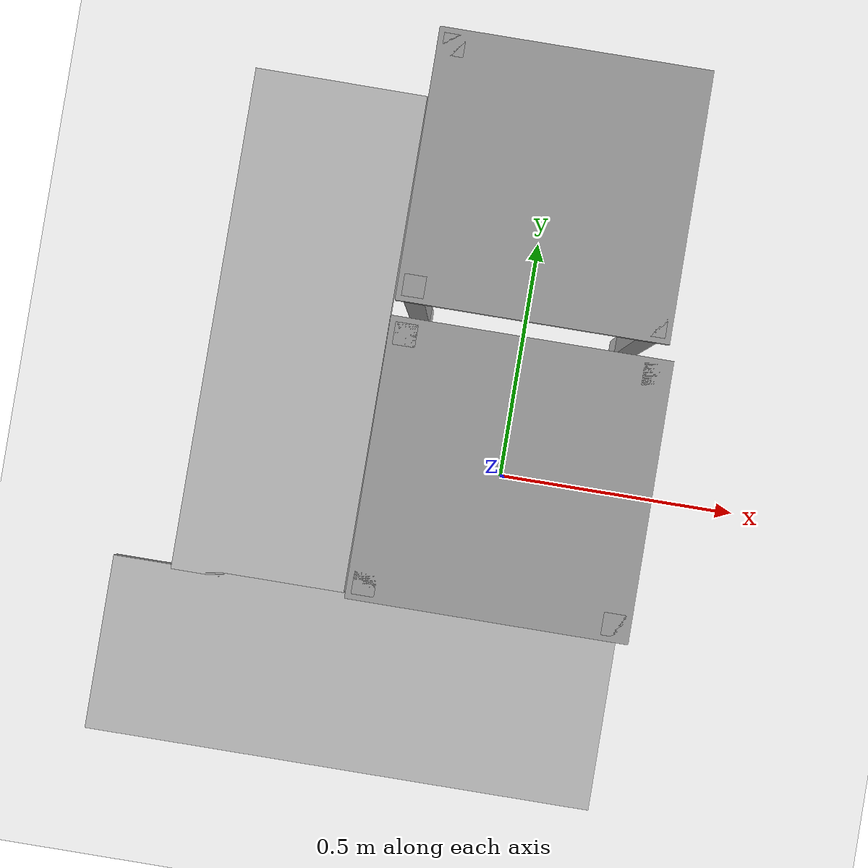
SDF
<sdf version="1.7">
 <world name="default">
  <plugin name="gazebo_ros_power_monitor_controller" filename="libgazebo_ros_link_attacher.so"/>
  <light name="sun" type="directional">
   <pose>0 0 10 0 -0 0</pose>
   <diffuse>0.8 0.8 0.8 1</diffuse>
   <specular>0.2 0.2 0.2 1</specular>
   <attenuation>
    <range>1000</range>
    <constant>0.9</constant>
    <linear>0.01</linear>
    <quadratic>0.001</quadratic>
   </attenuation>
   <direction>-0.5 0.1 -0.9</direction>
   <spot><inner_angle>0</inner_angle><outer_angle>0</outer_angle><falloff>0</falloff></spot>
  </light>
  <model name="ground_plane">
   <static>1</static>
   <link name="link">
    <collision name="collision">
     <geometry><plane><normal>0 0 1</normal><size>100 100</size></plane></geometry>
     <surface>
      <contact><collide_bitmask>65535</collide_bitmask></contact>
      <friction><ode><mu>100</mu><mu2>50</mu2></ode></friction>
     </surface>
    </collision>
    <visual name="visual">
     <cast_shadows>0</cast_shadows>
     <geometry><plane><normal>0 0 1</normal><size>100 100</size></plane></geometry>
     <material>
      <script><uri>file://media/materials/scripts/gazebo.material</uri><name>Gazebo/Grey</name></script>
     </material>
    </visual>
   </link>
  </model>
  <gravity>0 0 -9.8</gravity>
  <magnetic_field>6e-06 2.3e-05 -4.2e-05</magnetic_field>
  <atmosphere type="adiabatic"/>
  <physics type="ode">
   <max_step_size>0.001</max_step_size>
   <real_time_factor>1</real_time_factor>
   <real_time_update_rate>1000</real_time_update_rate>
  </physics>
  <scene><ambient>0.4 0.4 0.4 1</ambient><background>0.7 0.7 0.7 1</background><shadows>1</shadows></scene>
  <spherical_coordinates>
   <surface_model>EARTH_WGS84</surface_model>
   <latitude_deg>0</latitude_deg>
   <longitude_deg>0</longitude_deg>
   <elevation>0</elevation>
   <heading_deg>0</heading_deg>
  </spherical_coordinates>
  <model name="ur5_base">
   <static>1</static>
   <link name="top_plate">
    <pose>0 0 0.775 0 -0 0</pose>
    <collision name="top_plate_collision">
     <geometry><box><size>0.2 0.2 0.02</size></box></geometry>
     <surface><contact><collide_bitmask>1</collide_bitmask></contact></surface>
    </collision>
    <visual name="top_plate_visual">
     <geometry><box><size>0.5 0.5 0.02</size></box></geometry>
     <material>
      <script><uri>file://media/materials/scripts/gazebo.material</uri><name>Gazebo/Grey</name></script>
     </material>
    </visual>
   </link>
   <link name="leg1">
    <pose>0.22 0.22 0.285 0 -0 0</pose>
    <collision name="leg1_collision"><geometry><box><size>0.04 0.04 1</size></box></geometry></collision>
    <visual name="leg1_visual">
     <geometry><box><size>0.04 0.04 1</size></box></geometry>
     <material>
      <script><uri>file://media/materials/scripts/gazebo.material</uri><name>Gazebo/Grey</name></script>
     </material>
    </visual>
   </link>
   <link name="leg2">
    <pose>-0.22 0.22 0.285 0 -0 0</pose>
    <collision name="leg2_collision"><geometry><box><size>0.04 0.04 1</size></box></geometry></collision>
    <visual name="leg2_visual">
     <geometry><box><size>0.04 0.04 1</size></box></geometry>
     <material>
      <script><uri>file://media/materials/scripts/gazebo.material</uri><name>Gazebo/Grey</name></script>
     </material>
    </visual>
   </link>
   <link name="leg3">
    <pose>0.22 -0.22 0.285 0 -0 0</pose>
    <collision name="leg3_collision"><geometry><box><size>0.04 0.04 1</size></box></geometry></collision>
    <visual name="leg3_visual">
     <geometry><box><size>0.04 0.04 1</size></box></geometry>
     <material>
      <script><uri>file://media/materials/scripts/gazebo.material</uri><name>Gazebo/Grey</name></script>
     </material>
    </visual>
   </link>
   <link name="leg4">
    <pose>-0.22 -0.22 0.285 0 -0 0</pose>
    <collision name="leg4_collision"><geometry><box><size>0.04 0.04 1</size></box></geometry></collision>
    <visual name="leg4_visual">
     <geometry><box><size>0.04 0.04 1</size></box></geometry>
     <material>
      <script><uri>file://media/materials/scripts/gazebo.material</uri><name>Gazebo/Grey</name></script>
     </material>
    </visual>
   </link>
   <pose>0 0 0.110913 0 -0 0</pose>
  </model>
  <model name="end_table_left">
   <static>1</static>
   <link name="top_plate">
    <pose>0 0 0.755 0 -0 0</pose>
    <collision name="top_plate_collision">
     <geometry><box><size>0.913 0.713 0.04</size></box></geometry>
     <surface><contact><collide_bitmask>1</collide_bitmask></contact></surface>
    </collision>
    <visual name="top_plate_visual">
     <geometry><box><size>0.913 0.313 0.04</size></box></geometry>
     <material>
      <script>
       <uri>model://end_table_left/materials/scripts</uri>
       <uri>model://end_table_left/materials/textures</uri>
       <name>grid/Image</name>
      </script>
     </material>
    </visual>
   </link>
   <link name="leg1">
    <pose>0.22 -0.1 0.4 0 -0 0</pose>
    <collision name="leg1_collision"><geometry><box><size>0.04 0.04 0.74</size></box></geometry></collision>
    <visual name="leg1_visual">
     <geometry><box><size>0.04 0.04 0.74</size></box></geometry>
     <material>
      <script><uri>file://media/materials/scripts/gazebo.material</uri><name>Gazebo/White</name></script>
     </material>
    </visual>
   </link>
   <link name="leg2">
    <pose>-0.22 -0.1 0.4 0 -0 0</pose>
    <collision name="leg2_collision"><geometry><box><size>0.04 0.04 0.74</size></box></geometry></collision>
    <visual name="leg2_visual">
     <geometry><box><size>0.04 0.04 0.74</size></box></geometry>
     <material>
      <script><uri>file://media/materials/scripts/gazebo.material</uri><name>Gazebo/White</name></script>
     </material>
    </visual>
   </link>
   <pose>-0.21923 -0.405024 0 0 -0 0</pose>
  </model>
  <model name="end_table_right">
   <static>1</static>
   <link name="top_plate_right">
    <pose>0 0 0.755 0 -0 0</pose>
    <collision name="top_plate_collision">
     <geometry><box><size>0.913 0.713 0.04</size></box></geometry>
     <surface><contact><collide_bitmask>1</collide_bitmask></contact></surface>
    </collision>
    <visual name="top_plate_visual">
     <geometry><box><size>0.913 0.313 0.04</size></box></geometry>
     <material>
      <script>
       <uri>model://end_table_right/materials/scripts</uri>
       <uri>model://end_table_right/materials/textures</uri>
       <name>grid/Image1</name>
      </script>
     </material>
    </visual>
   </link>
   <link name="leg_right">
    <pose>0.22 -0.1 0.4 0 -0 0</pose>
    <collision name="leg_right_collision"><geometry><box><size>0.04 0.04 0.74</size></box></geometry></collision>
    <visual name="leg_right_visual">
     <geometry><box><size>0.04 0.04 0.74</size></box></geometry>
     <material>
      <script><uri>file://media/materials/scripts/gazebo.material</uri><name>Gazebo/White</name></script>
     </material>
    </visual>
   </link>
   <link name="leg2">
    <pose>-0.22 -0.1 0.4 0 -0 0</pose>
    <collision name="leg2_collision"><geometry><box><size>0.04 0.04 0.74</size></box></geometry></collision>
    <visual name="leg2_visual">
     <geometry><box><size>0.04 0.04 0.74</size></box></geometry>
     <material>
      <script><uri>file://media/materials/scripts/gazebo.material</uri><name>Gazebo/White</name></script>
     </material>
    </visual>
   </link>
   <pose>-0.412449 0.199808 0 0 0 -1.57434</pose>
  </model>
  <model name="ur5_base_clone">
   <static>1</static>
   <link name="top_plate">
    <pose>0 0 0.775 0 -0 0</pose>
    <collision name="top_plate_collision">
     <geometry><box><size>0.2 0.2 0.02</size></box></geometry>
     <surface><contact><collide_bitmask>1</collide_bitmask></contact></surface>
    </collision>
    <visual name="top_plate_visual">
     <geometry><box><size>0.5 0.5 0.02</size></box></geometry>
     <material>
      <script><uri>file://media/materials/scripts/gazebo.material</uri><name>Gazebo/Grey</name></script>
     </material>
    </visual>
   </link>
   <link name="leg1">
    <pose>0.22 0.22 0.285 0 -0 0</pose>
    <collision name="leg1_collision"><geometry><box><size>0.04 0.04 1</size></box></geometry></collision>
    <visual name="leg1_visual">
     <geometry><box><size>0.04 0.04 1</size></box></geometry>
     <material>
      <script><uri>file://media/materials/scripts/gazebo.material</uri><name>Gazebo/Grey</name></script>
     </material>
    </visual>
   </link>
   <link name="leg2">
    <pose>-0.22 0.22 0.285 0 -0 0</pose>
    <collision name="leg2_collision"><geometry><box><size>0.04 0.04 1</size></box></geometry></collision>
    <visual name="leg2_visual">
     <geometry><box><size>0.04 0.04 1</size></box></geometry>
     <material>
      <script><uri>file://media/materials/scripts/gazebo.material</uri><name>Gazebo/Grey</name></script>
     </material>
    </visual>
   </link>
   <link name="leg3">
    <pose>0.22 -0.22 0.285 0 -0 0</pose>
    <collision name="leg3_collision"><geometry><box><size>0.04 0.04 1</size></box></geometry></collision>
    <visual name="leg3_visual">
     <geometry><box><size>0.04 0.04 1</size></box></geometry>
     <material>
      <script><uri>file://media/materials/scripts/gazebo.material</uri><name>Gazebo/Grey</name></script>
     </material>
    </visual>
   </link>
   <link name="leg4">
    <pose>-0.22 -0.22 0.285 0 -0 0</pose>
    <collision name="leg4_collision"><geometry><box><size>0.04 0.04 1</size></box></geometry></collision>
    <visual name="leg4_visual">
     <geometry><box><size>0.04 0.04 1</size></box></geometry>
     <material>
      <script><uri>file://media/materials/scripts/gazebo.material</uri><name>Gazebo/Grey</name></script>
     </material>
    </visual>
   </link>
   <pose>-0.002506 0.534463 -0.006715 0 -0 0</pose>
  </model>
 </world>
</sdf>
